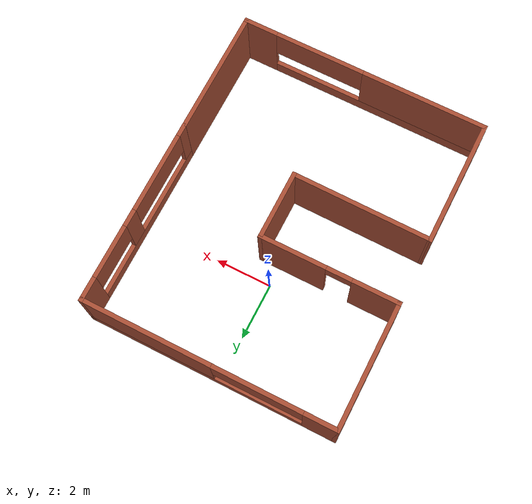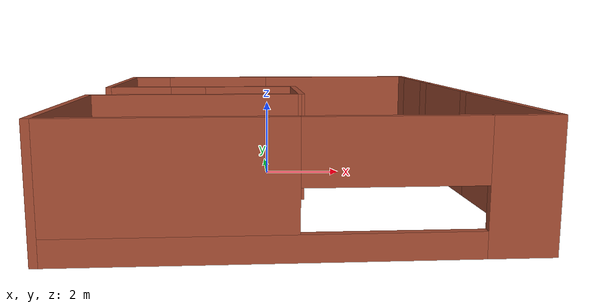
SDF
<?xml version='1.0'?>
<sdf version='1.6'>
  <model name='factory_room'>
    <pose frame=''>0.239357 -1.91124 0 0 -0 0</pose>
    <link name='Wall_34'>
      <collision name='Wall_34_Collision'>
        <geometry>
          <box>
            <size>4.5 0.15 2.5</size>
          </box>
        </geometry>
        <pose frame=''>0 0 1.25 0 -0 0</pose>
      </collision>
      <visual name='Wall_34_Visual'>
        <pose frame=''>0 0 1.25 0 -0 0</pose>
        <geometry>
          <box>
            <size>4.5 0.15 2.5</size>
          </box>
        </geometry>
        <material>
          <script>
            <uri>file://media/materials/scripts/gazebo.material</uri>
            <name>Gazebo/Bricks</name>
          </script>
          <ambient>1 1 1 1</ambient>
        </material>
      </visual>
      <pose frame=''>4.4246 -3.33419 0 0 0 -1.5708</pose>
    </link>
    <link name='Wall_35'>
      <pose frame=''>-0.0004 -5.50919 0 0 -0 3.14159</pose>
      <visual name='Wall_35_Visual_0'>
        <pose frame=''>-3.87038 0 1.25 0 -0 0</pose>
        <geometry>
          <box>
            <size>1.25925 0.15 2.5</size>
          </box>
        </geometry>
        <material>
          <script>
            <uri>file://media/materials/scripts/gazebo.material</uri>
            <name>Gazebo/Bricks</name>
          </script>
          <ambient>1 1 1 1</ambient>
        </material>
      </visual>
      <collision name='Wall_35_Collision_0'>
        <geometry>
          <box>
            <size>1.25925 0.15 2.5</size>
          </box>
        </geometry>
        <pose frame=''>-3.87038 0 1.25 0 -0 0</pose>
      </collision>
      <visual name='Wall_35_Visual_1'>
        <pose frame=''>0.629623 0 0.25 0 -0 0</pose>
        <geometry>
          <box>
            <size>7.74075 0.15 0.5</size>
          </box>
        </geometry>
        <material>
          <script>
            <uri>file://media/materials/scripts/gazebo.material</uri>
            <name>Gazebo/Bricks</name>
          </script>
          <ambient>1 1 1 1</ambient>
        </material>
      </visual>
      <collision name='Wall_35_Collision_1'>
        <geometry>
          <box>
            <size>7.74075 0.15 0.5</size>
          </box>
        </geometry>
        <pose frame=''>0.629623 0 0.25 0 -0 0</pose>
      </collision>
      <visual name='Wall_35_Visual_2'>
        <pose frame=''>2.24649 0 1.5 0 -0 0</pose>
        <geometry>
          <box>
            <size>4.50701 0.15 2</size>
          </box>
        </geometry>
        <material>
          <script>
            <uri>file://media/materials/scripts/gazebo.material</uri>
            <name>Gazebo/Bricks</name>
          </script>
          <ambient>1 1 1 1</ambient>
        </material>
      </visual>
      <collision name='Wall_35_Collision_2'>
        <geometry>
          <box>
            <size>4.50701 0.15 2</size>
          </box>
        </geometry>
        <pose frame=''>2.24649 0 1.5 0 -0 0</pose>
      </collision>
      <visual name='Wall_35_Visual_3'>
        <pose frame=''>-1.62388 0 1.9 0 -0 0</pose>
        <geometry>
          <box>
            <size>3.23374 0.15 1.2</size>
          </box>
        </geometry>
        <material>
          <script>
            <uri>file://media/materials/scripts/gazebo.material</uri>
            <name>Gazebo/Bricks</name>
          </script>
          <ambient>1 1 1 1</ambient>
        </material>
      </visual>
      <collision name='Wall_35_Collision_3'>
        <geometry>
          <box>
            <size>3.23374 0.15 1.2</size>
          </box>
        </geometry>
        <pose frame=''>-1.62388 0 1.9 0 -0 0</pose>
      </collision>
    </link>
    <link name='Wall_36'>
      <collision name='Wall_36_Collision'>
        <geometry>
          <box>
            <size>4.5 0.15 2.5</size>
          </box>
        </geometry>
        <pose frame=''>0 0 1.25 0 -0 0</pose>
      </collision>
      <visual name='Wall_36_Visual'>
        <pose frame=''>0 0 1.25 0 -0 0</pose>
        <geometry>
          <box>
            <size>4.5 0.15 2.5</size>
          </box>
        </geometry>
        <material>
          <script>
            <uri>file://media/materials/scripts/gazebo.material</uri>
            <name>Gazebo/Bricks</name>
          </script>
          <ambient>1 1 1 1</ambient>
        </material>
      </visual>
      <pose frame=''>-4.4254 -3.33419 0 0 -0 1.5708</pose>
    </link>
    <link name='Wall_38'>
      <collision name='Wall_38_Collision'>
        <geometry>
          <box>
            <size>2.5 0.15 2.5</size>
          </box>
        </geometry>
        <pose frame=''>0 0 1.25 0 -0 0</pose>
      </collision>
      <visual name='Wall_38_Visual'>
        <pose frame=''>0 0 1.25 0 -0 0</pose>
        <geometry>
          <box>
            <size>2.5 0.15 2.5</size>
          </box>
        </geometry>
        <material>
          <script>
            <uri>file://media/materials/scripts/gazebo.material</uri>
            <name>Gazebo/Bricks</name>
          </script>
          <ambient>1 1 1 1</ambient>
        </material>
      </visual>
      <pose frame=''>0.425887 -0.015813 0 0 -0 1.5708</pose>
    </link>
    <link name='Wall_39'>
      <pose frame=''>-1.99911 1.15919 0 0 -0 3.14159</pose>
      <visual name='Wall_39_Visual_0'>
        <pose frame=''>-1.30008 0 1.25 0 -0 0</pose>
        <geometry>
          <box>
            <size>2.39984 0.15 2.5</size>
          </box>
        </geometry>
        <material>
          <script>
            <uri>file://media/materials/scripts/gazebo.material</uri>
            <name>Gazebo/Bricks</name>
          </script>
          <ambient>1 1 1 1</ambient>
        </material>
      </visual>
      <collision name='Wall_39_Collision_0'>
        <geometry>
          <box>
            <size>2.39984 0.15 2.5</size>
          </box>
        </geometry>
        <pose frame=''>-1.30008 0 1.25 0 -0 0</pose>
      </collision>
      <visual name='Wall_39_Visual_1'>
        <pose frame=''>1.64992 0 1.25 0 -0 0</pose>
        <geometry>
          <box>
            <size>1.70016 0.15 2.5</size>
          </box>
        </geometry>
        <material>
          <script>
            <uri>file://media/materials/scripts/gazebo.material</uri>
            <name>Gazebo/Bricks</name>
          </script>
          <ambient>1 1 1 1</ambient>
        </material>
      </visual>
      <collision name='Wall_39_Collision_1'>
        <geometry>
          <box>
            <size>1.70016 0.15 2.5</size>
          </box>
        </geometry>
        <pose frame=''>1.64992 0 1.25 0 -0 0</pose>
      </collision>
      <visual name='Wall_39_Visual_2'>
        <pose frame=''>0.349836 0 2.25 0 -0 0</pose>
        <geometry>
          <box>
            <size>0.9 0.15 0.5</size>
          </box>
        </geometry>
        <material>
          <script>
            <uri>file://media/materials/scripts/gazebo.material</uri>
            <name>Gazebo/Bricks</name>
          </script>
          <ambient>1 1 1 1</ambient>
        </material>
      </visual>
      <collision name='Wall_39_Collision_2'>
        <geometry>
          <box>
            <size>0.9 0.15 0.5</size>
          </box>
        </geometry>
        <pose frame=''>0.349836 0 2.25 0 -0 0</pose>
      </collision>
    </link>
    <link name='Wall_40'>
      <collision name='Wall_40_Collision'>
        <geometry>
          <box>
            <size>4.5 0.15 2.5</size>
          </box>
        </geometry>
        <pose frame=''>0 0 1.25 0 -0 0</pose>
      </collision>
      <visual name='Wall_40_Visual'>
        <pose frame=''>0 0 1.25 0 -0 0</pose>
        <geometry>
          <box>
            <size>4.5 0.15 2.5</size>
          </box>
        </geometry>
        <material>
          <script>
            <uri>file://media/materials/scripts/gazebo.material</uri>
            <name>Gazebo/Bricks</name>
          </script>
          <ambient>1 1 1 1</ambient>
        </material>
      </visual>
      <pose frame=''>-4.42411 3.33419 0 0 -0 1.5708</pose>
    </link>
    <link name='Wall_41'>
      <pose frame=''>0.000887 5.50919 0 0 -0 0</pose>
      <visual name='Wall_41_Visual_0'>
        <pose frame=''>-3.8901 0 1.25 0 -0 0</pose>
        <geometry>
          <box>
            <size>1.21979 0.15 2.5</size>
          </box>
        </geometry>
        <material>
          <script>
            <uri>file://media/materials/scripts/gazebo.material</uri>
            <name>Gazebo/Bricks</name>
          </script>
          <ambient>1 1 1 1</ambient>
        </material>
      </visual>
      <collision name='Wall_41_Collision_0'>
        <geometry>
          <box>
            <size>1.21979 0.15 2.5</size>
          </box>
        </geometry>
        <pose frame=''>-3.8901 0 1.25 0 -0 0</pose>
      </collision>
      <visual name='Wall_41_Visual_1'>
        <pose frame=''>0.609898 0 0.25 0 -0 0</pose>
        <geometry>
          <box>
            <size>7.7802 0.15 0.5</size>
          </box>
        </geometry>
        <material>
          <script>
            <uri>file://media/materials/scripts/gazebo.material</uri>
            <name>Gazebo/Bricks</name>
          </script>
          <ambient>1 1 1 1</ambient>
        </material>
      </visual>
      <collision name='Wall_41_Collision_1'>
        <geometry>
          <box>
            <size>7.7802 0.15 0.5</size>
          </box>
        </geometry>
        <pose frame=''>0.609898 0 0.25 0 -0 0</pose>
      </collision>
      <visual name='Wall_41_Visual_2'>
        <pose frame=''>2.18031 0 1.5 0 -0 0</pose>
        <geometry>
          <box>
            <size>4.63939 0.15 2</size>
          </box>
        </geometry>
        <material>
          <script>
            <uri>file://media/materials/scripts/gazebo.material</uri>
            <name>Gazebo/Bricks</name>
          </script>
          <ambient>1 1 1 1</ambient>
        </material>
      </visual>
      <collision name='Wall_41_Collision_2'>
        <geometry>
          <box>
            <size>4.63939 0.15 2</size>
          </box>
        </geometry>
        <pose frame=''>2.18031 0 1.5 0 -0 0</pose>
      </collision>
      <visual name='Wall_41_Visual_3'>
        <pose frame=''>-1.7098 0 1.9 0 -0 0</pose>
        <geometry>
          <box>
            <size>3.14082 0.15 1.2</size>
          </box>
        </geometry>
        <material>
          <script>
            <uri>file://media/materials/scripts/gazebo.material</uri>
            <name>Gazebo/Bricks</name>
          </script>
          <ambient>1 1 1 1</ambient>
        </material>
      </visual>
      <collision name='Wall_41_Collision_3'>
        <geometry>
          <box>
            <size>3.14082 0.15 1.2</size>
          </box>
        </geometry>
        <pose frame=''>-1.7098 0 1.9 0 -0 0</pose>
      </collision>
    </link>
    <link name='Wall_42'>
      <pose frame=''>4.42589 2.20919 0 0 0 -1.5708</pose>
      <visual name='Wall_42_Visual_0'>
        <pose frame=''>-2.93644 0 1.25 0 -0 0</pose>
        <geometry>
          <box>
            <size>0.87712 0.15 2.5</size>
          </box>
        </geometry>
        <material>
          <script>
            <uri>file://media/materials/scripts/gazebo.material</uri>
            <name>Gazebo/Bricks</name>
          </script>
          <ambient>1 1 1 1</ambient>
        </material>
      </visual>
      <collision name='Wall_42_Collision_0'>
        <geometry>
          <box>
            <size>0.87712 0.15 2.5</size>
          </box>
        </geometry>
        <pose frame=''>-2.93644 0 1.25 0 -0 0</pose>
      </collision>
      <visual name='Wall_42_Visual_1'>
        <pose frame=''>0.43856 0 0.25 0 -0 0</pose>
        <geometry>
          <box>
            <size>5.87288 0.15 0.5</size>
          </box>
        </geometry>
        <material>
          <script>
            <uri>file://media/materials/scripts/gazebo.material</uri>
            <name>Gazebo/Bricks</name>
          </script>
          <ambient>1 1 1 1</ambient>
        </material>
      </visual>
      <collision name='Wall_42_Collision_1'>
        <geometry>
          <box>
            <size>5.87288 0.15 0.5</size>
          </box>
        </geometry>
        <pose frame=''>0.43856 0 0.25 0 -0 0</pose>
      </collision>
      <visual name='Wall_42_Visual_2'>
        <pose frame=''>-0.302367 0 1.5 0 -0 0</pose>
        <geometry>
          <box>
            <size>0.609811 0.15 2</size>
          </box>
        </geometry>
        <material>
          <script>
            <uri>file://media/materials/scripts/gazebo.material</uri>
            <name>Gazebo/Bricks</name>
          </script>
          <ambient>1 1 1 1</ambient>
        </material>
      </visual>
      <collision name='Wall_42_Collision_2'>
        <geometry>
          <box>
            <size>0.609811 0.15 2</size>
          </box>
        </geometry>
        <pose frame=''>-0.302367 0 1.5 0 -0 0</pose>
      </collision>
      <visual name='Wall_42_Visual_3'>
        <pose frame=''>3.13334 0 1.5 0 -0 0</pose>
        <geometry>
          <box>
            <size>0.483315 0.15 2</size>
          </box>
        </geometry>
        <material>
          <script>
            <uri>file://media/materials/scripts/gazebo.material</uri>
            <name>Gazebo/Bricks</name>
          </script>
          <ambient>1 1 1 1</ambient>
        </material>
      </visual>
      <collision name='Wall_42_Collision_3'>
        <geometry>
          <box>
            <size>0.483315 0.15 2</size>
          </box>
        </geometry>
        <pose frame=''>3.13334 0 1.5 0 -0 0</pose>
      </collision>
      <visual name='Wall_42_Visual_4'>
        <pose frame=''>-1.55258 0 1.9 0 -0 0</pose>
        <geometry>
          <box>
            <size>1.89061 0.15 1.2</size>
          </box>
        </geometry>
        <material>
          <script>
            <uri>file://media/materials/scripts/gazebo.material</uri>
            <name>Gazebo/Bricks</name>
          </script>
          <ambient>1 1 1 1</ambient>
        </material>
      </visual>
      <collision name='Wall_42_Collision_4'>
        <geometry>
          <box>
            <size>1.89061 0.15 1.2</size>
          </box>
        </geometry>
        <pose frame=''>-1.55258 0 1.9 0 -0 0</pose>
      </collision>
      <visual name='Wall_42_Visual_5'>
        <pose frame=''>1.44711 0 1.9 0 -0 0</pose>
        <geometry>
          <box>
            <size>2.88915 0.15 1.2</size>
          </box>
        </geometry>
        <material>
          <script>
            <uri>file://media/materials/scripts/gazebo.material</uri>
            <name>Gazebo/Bricks</name>
          </script>
          <ambient>1 1 1 1</ambient>
        </material>
      </visual>
      <collision name='Wall_42_Collision_5'>
        <geometry>
          <box>
            <size>2.88915 0.15 1.2</size>
          </box>
        </geometry>
        <pose frame=''>1.44711 0 1.9 0 -0 0</pose>
      </collision>
    </link>
    <link name='Wall_44'>
      <collision name='Wall_44_Collision'>
        <geometry>
          <box>
            <size>5.00139 0.15 2.5</size>
          </box>
        </geometry>
        <pose frame=''>0 0 1.25 0 -0 0</pose>
      </collision>
      <visual name='Wall_44_Visual'>
        <pose frame=''>0 0 1.25 0 -0 0</pose>
        <geometry>
          <box>
            <size>5.00139 0.15 2.5</size>
          </box>
        </geometry>
        <material>
          <script>
            <uri>file://media/materials/scripts/gazebo.material</uri>
            <name>Gazebo/Bricks</name>
          </script>
          <ambient>1 1 1 1</ambient>
        </material>
      </visual>
      <pose frame=''>-1.99976 -1.175 0 0 0 -0.006519</pose>
    </link>
    <static>1</static>
  </model>
</sdf>
